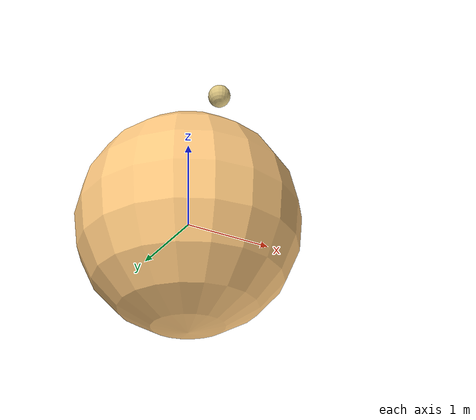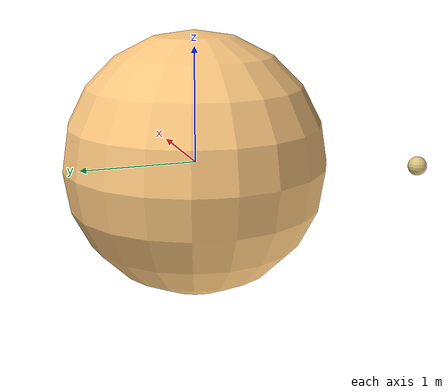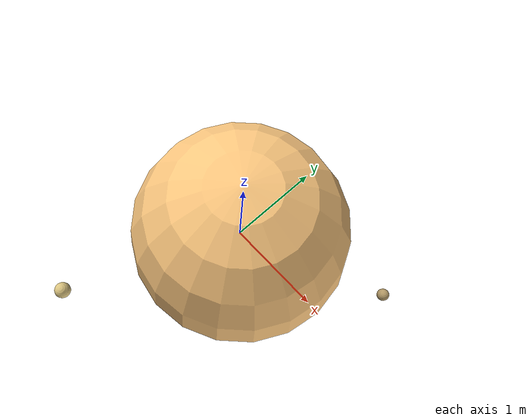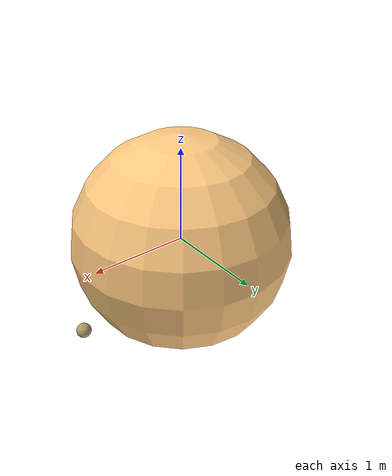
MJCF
<mujoco>
            <compiler angle="radian" autolimits="true" />
            <compiler meshdir="asset" texturedir="asset" assetdir="asset" />
            <option gravity="0 0 0" />
            <default class="main">
            <geom friction="0 0 0" solimp="0.9 1 0.001 0.01 20" solref="0.02 1" condim="1" />
        </default>

        <visual>
            <headlight diffuse="0.7 0.7 0.7" ambient="0.5 0.5 0.5" />
            <global offwidth="1920" offheight="1080" />
        </visual>

        <asset>
            <texture type="skybox" builtin="gradient" rgb1="0 0.5 0.7" rgb2="0 0 0" width="512" height="512" />
            <texture type="2d" name="checks1" builtin="checker" rgb1="1 1 1" rgb2="0 0 0" width="256" height="256" />
            <material name="test_color" texture="checks1" texuniform="true" texrepeat="2 2" />
            <material name="reflectance" reflectance=".4" />
            <texture name="grid" type="2d" builtin="checker" width="512" height="512" rgb1="1.0 0.6235 0.1098" rgb2="1.0 0.749 0.4118" />
            <texture name="white-texture-background" type="2d" file="/home/aryansatpathy/DevStuff/cmu/PHO/sim/geom_sources/fixed_sources/rocket/rocket.white-texture-background.png" content_type="image/png" />
            <material name="pulley" texture="grid" texrepeat="2 2" texuniform="true" />

        </asset>
        <worldbody><body name="solarsystementity_0.planet-0" pos="1.45 0.62 0.0" quat="1.0 0.0 0.0 0.0"><geom name="solarsystementity_0.planet-0.geom" type="sphere" pos="0 0 0" size="0.06" material="reflectance" rgba="0.7 0.6 0.4 1.0" mass="0.46" quat="0 0 0 1" contype="1" conaffinity="1" />
<site name="solarsystementity_0.planet-0.site" pos="0 0 0" quat="1.0 -0.0 -0.0 -0.0" />
<site name="solarsystementity_0.planet-0.center_site" pos="0 0 0" quat="1.0 -0.0 -0.0 -0.0" />
<joint name="solarsystementity_0.planet-0.joint" type="free" axis="0 0 0" pos="0 0 0" />
</body>
<body name="solarsystementity_0.planet-1" pos="-0.74 -1.75 0.0" quat="1.0 0.0 0.0 0.0"><geom name="solarsystementity_0.planet-1.geom" type="sphere" pos="0 0 0" size="0.08" material="reflectance" rgba="0.87 0.78 0.51 1.0" mass="0.43" quat="0 0 0 1" contype="1" conaffinity="1" />
<site name="solarsystementity_0.planet-1.site" pos="0 0 0" quat="1.0 -0.0 -0.0 -0.0" />
<site name="solarsystementity_0.planet-1.center_site" pos="0 0 0" quat="1.0 -0.0 -0.0 -0.0" />
<joint name="solarsystementity_0.planet-1.joint" type="free" axis="0 0 0" pos="0 0 0" />
</body>
<body name="solarsystementity_0.star" pos="0.0 0.0 0.0" quat="1.0 0.0 0.0 0.0"><geom name="solarsystementity_0.star.geom" type="sphere" pos="0 0 0" size="1.14" material="reflectance" rgba="0.9978551524259167 0.7889974484381095 0.5 1.0" mass="3.45" quat="0 0 0 1" contype="1" conaffinity="1" />
<site name="solarsystementity_0.star.site" pos="0 0 0" quat="1.0 -0.0 -0.0 -0.0" />
<site name="solarsystementity_0.star.center_site" pos="0 0 0" quat="1.0 -0.0 -0.0 -0.0" />
</body>
</worldbody><sensor>

        </sensor>
        <custom>

        </custom>
        <contact>

        </contact>
        <actuator>

        </actuator>
    </mujoco>
